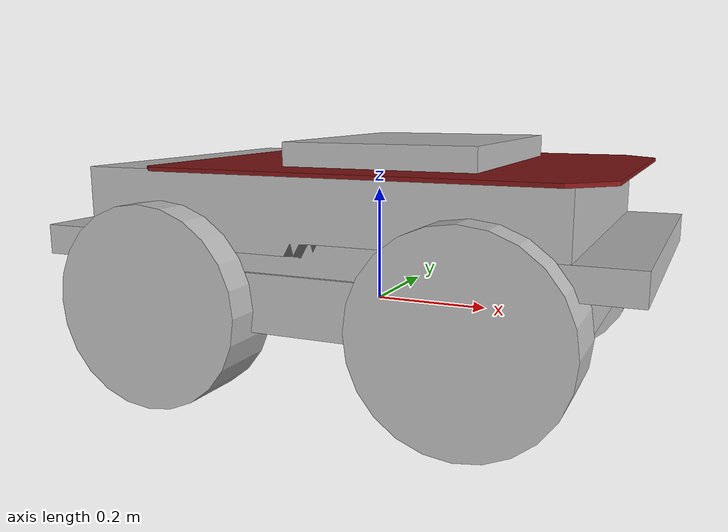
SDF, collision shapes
<?xml version="1.0"?>
<sdf version="1.6">
    <model name="X1">
        <enable_wind>1</enable_wind>
        <static>0</static>
        <link name="base_link">
            <inertial>
                <pose frame="">0.0 0.0 0.062 0 0 0</pose>
                <mass>46.034</mass>
                <inertia>
                    <ixx>0.613201</ixx>
                    <ixy>-0.0236401</ixy>
                    <ixz>-0.1197</ixz>
                    <iyy>1.7496</iyy>
                    <iyz>-0.00154411</iyz>
                    <izz>2.0406</izz>
                </inertia>
            </inertial>
            <collision name="base_link_collision">
                <pose frame="">0 0 0.12 0 0 0</pose>
                <geometry>
                    <box>
                        <size>0.9874 0.5709 0.05</size>
                    </box>
                </geometry>
            </collision>
            <collision name="base_link_collision_bottom">
                <pose frame="">0 0 0.046 0 0 0</pose>
                <geometry>
                    <box>
                        <size>0.80 0.5709 0.095</size>
                    </box>
                </geometry>
            </collision>
            <collision name="base_link_collision_1">
                <pose frame="">0 0 0.185625 0 0 0</pose>
                <geometry>
                    <box>
                        <size>0.78992 0.5709 0.12375</size>
                    </box>
                </geometry>
            </collision>
            <collision name="top_plate_collision">
                <pose frame="">0.0812 0 0.245 0 0 0</pose>
                <geometry>
                    <mesh>
                        <uri>model://X1/meshes/top_plate.dae</uri>
                    </mesh>
                </geometry>
            </collision>
            <collision name="top_plate_collision_2">
                <pose frame="">0.0812 0 0.245 0 0 0</pose>
                <geometry>
                    <box>
                        <size>0.32 0.41 0.09</size>
                    </box>
                </geometry>
            </collision>
            <visual name="base_link_visual">
                <pose frame="">0 0 0 0 0 -3.14159</pose>
                <geometry>
                    <mesh>
                        <uri>model://X1/meshes/chassis.dae</uri>
                    </mesh>
                </geometry>
            </visual>
            <visual name="marker_visual_1">
                <pose frame="">0.066047 0.212211 0.209188 -3.14159 1.57079 -1.60259</pose>
                <geometry>
                    <mesh>
                        <uri>model://X1/meshes/led.dae</uri>
                    </mesh>
                </geometry>
            </visual>
            <visual name="marker_visual_2">
                <pose frame="">-0.066047 0.212211 0.209188 -3.14159 1.57079 -1.60259</pose>
                <geometry>
                    <mesh>
                        <uri>model://X1/meshes/led.dae</uri>
                    </mesh>
                </geometry>
            </visual>
            <visual name="marker_visual_3">
                <pose frame="">-0.42493 0 0.209188 3.14159 1.57079 7e-06</pose>
                <geometry>
                    <mesh>
                        <uri>model://X1/meshes/led.dae</uri>
                    </mesh>
                </geometry>
            </visual>
            <visual name="marker_visual_4">
                <pose frame="">-0.42493 0.13619 0.209188 3.14159 1.57079 7e-06</pose>
                <geometry>
                    <mesh>
                        <uri>model://X1/meshes/led.dae</uri>
                    </mesh>
                </geometry>
            </visual>
            <visual name="marker_visual_5">
                <pose frame="">-0.42493 -0.13619 0.209188 3.14159 1.57079 7e-06</pose>
                <geometry>
                    <mesh>
                        <uri>model://X1/meshes/led.dae</uri>
                    </mesh>
                </geometry>
            </visual>
            <visual name="marker_visual_6">
                <pose frame="">0.066047 -0.212211 0.209188 3.14159 1.57079 1.60259</pose>
                <geometry>
                    <mesh>
                        <uri>model://X1/meshes/led.dae</uri>
                    </mesh>
                </geometry>
            </visual>
            <visual name="marker_visual_7">
                <pose frame="">-0.066047 -0.212211 0.209188 3.14159 1.57079 1.60259</pose>
                <geometry>
                    <mesh>
                        <uri>model://X1/meshes/led.dae</uri>
                    </mesh>
                </geometry>
            </visual>
            <visual name="top_plate_visual">
                <pose frame="">0.0812 0 0.245 0 0 0</pose>
                <geometry>
                    <mesh>
                        <uri>model://X1/meshes/top_plate_new.dae</uri>
                    </mesh>
                </geometry>
            </visual>

        </link>
        <link name="front_left_wheel">
            <pose frame="">0.256 0.2854 0.03282 0 0 0</pose>
            <inertial>
                <mass>2.637</mass>
                <inertia>
                    <ixx>0.02467</ixx>
                    <ixy>0</ixy>
                    <ixz>0</ixz>
                    <iyy>0.04411</iyy>
                    <iyz>0</iyz>
                    <izz>0.02467</izz>
                </inertia>
            </inertial>
            <collision name="collision">
                <pose frame="">0 0 0 -1.5707963267948966 0 0</pose>
                <geometry>
                    <cylinder>
                        <length>0.1143</length>
                        <radius>0.1651</radius>
                    </cylinder>
                </geometry>
                <surface>
                    <friction>
                        <ode>
                            <mu>0.5</mu>
                            <mu2>1</mu2>
                            <slip1>0.00062</slip1>
                            <slip2>0</slip2>
                            <fdir1>0 0 1</fdir1>
                        </ode>
                    </friction>
                </surface>
            </collision>
            <visual name="visual">
                <geometry>
                    <mesh>
                        <uri>model://X1/meshes/wheel.dae</uri>
                    </mesh>
                </geometry>
            </visual>
        </link>
        <joint name="front_left_wheel_joint" type="revolute">
            <parent>base_link</parent>
            <child>front_left_wheel</child>
            <axis>
                <xyz>0 1 0</xyz>
                <limit>
                    <lower>-1.79769e+308</lower>
                    <upper>+1.79769e+308</upper>
                </limit>
            </axis>
        </joint>
        <link name="front_right_wheel">
            <pose frame="">0.256 -0.2854 0.03282 0 0 0</pose>
            <inertial>
                <mass>2.637</mass>
                <inertia>
                    <ixx>0.02467</ixx>
                    <ixy>0</ixy>
                    <ixz>0</ixz>
                    <iyy>0.04411</iyy>
                    <iyz>0</iyz>
                    <izz>0.02467</izz>
                </inertia>
            </inertial>
            <collision name="collision">
                <pose frame="">0 0 0 -1.5707963267948966 0 0</pose>
                <geometry>
                    <cylinder>
                        <length>0.1143</length>
                        <radius>0.1651</radius>
                    </cylinder>
                </geometry>
                <surface>
                    <friction>
                        <ode>
                            <mu>0.5</mu>
                            <mu2>1</mu2>
                            <slip1>0.00062</slip1>
                            <slip2>0</slip2>
                            <fdir1>0 0 1</fdir1>
                        </ode>
                    </friction>
                </surface>
            </collision>
            <visual name="visual">
                <geometry>
                    <mesh>
                        <uri>model://X1/meshes/wheel.dae</uri>
                    </mesh>
                </geometry>
            </visual>
        </link>
        <joint name="front_right_wheel_joint" type="revolute">
            <child>front_right_wheel</child>
            <parent>base_link</parent>
            <axis>
                <xyz>0 1 0</xyz>
                <limit>
                    <lower>-1.79769e+308</lower>
                    <upper>+1.79769e+308</upper>
                </limit>
            </axis>
        </joint>
        <link name="rear_left_wheel">
            <pose frame="">-0.256 0.2854 0.03282 0 0 0</pose>
            <inertial>
                <mass>2.637</mass>
                <inertia>
                    <ixx>0.02467</ixx>
                    <ixy>0</ixy>
                    <ixz>0</ixz>
                    <iyy>0.04411</iyy>
                    <iyz>0</iyz>
                    <izz>0.02467</izz>
                </inertia>
            </inertial>
            <collision name="collision">
                <pose frame="">0 0 0 -1.5707963267948966 0 0</pose>
                <geometry>
                    <cylinder>
                        <length>0.1143</length>
                        <radius>0.1651</radius>
                    </cylinder>
                </geometry>
                <surface>
                    <friction>
                        <ode>
                            <mu>0.5</mu>
                            <mu2>1</mu2>
                            <slip1>0.00062</slip1>
                            <slip2>0</slip2>
                            <fdir1>0 0 1</fdir1>
                        </ode>
                    </friction>
                </surface>
            </collision>
            <visual name="visual">
                <geometry>
                    <mesh>
                        <uri>model://X1/meshes/wheel.dae</uri>
                    </mesh>
                </geometry>
            </visual>
        </link>
        <joint name="rear_left_wheel_joint" type="revolute">
            <parent>base_link</parent>
            <child>rear_left_wheel</child>
            <axis>
                <xyz>0 1 0</xyz>
                <limit>
                    <lower>-1.79769e+308</lower>
                    <upper>+1.79769e+308</upper>
                </limit>
            </axis>
        </joint>
        <link name="rear_right_wheel">
            <pose frame="">-0.256 -0.2854 0.03282 0 0 0</pose>
            <inertial>
                <mass>2.637</mass>
                <inertia>
                    <ixx>0.02467</ixx>
                    <ixy>0</ixy>
                    <ixz>0</ixz>
                    <iyy>0.04411</iyy>
                    <iyz>0</iyz>
                    <izz>0.02467</izz>
                </inertia>
            </inertial>
            <collision name="collision">
                <pose frame="">0 0 0 -1.5707963267948966 0 0</pose>
                <geometry>
                    <cylinder>
                        <length>0.1143</length>
                        <radius>0.1651</radius>
                    </cylinder>
                </geometry>
                <surface>
                    <friction>
                        <ode>
                            <mu>0.5</mu>
                            <mu2>1</mu2>
                            <slip1>0.00062</slip1>
                            <slip2>0</slip2>
                            <fdir1>0 0 1</fdir1>
                        </ode>
                    </friction>
                </surface>
            </collision>
            <visual name="visual">
                <geometry>
                    <mesh>
                        <uri>model://X1/meshes/wheel.dae</uri>
                    </mesh>
                </geometry>
            </visual>
        </link>
        <joint name="rear_right_wheel_joint" type="revolute">
            <child>rear_right_wheel</child>
            <parent>base_link</parent>
            <axis>
                <xyz>0 1 0</xyz>
                <limit>
                    <lower>-1.79769e+308</lower>
                    <upper>+1.79769e+308</upper>
                </limit>
            </axis>
        </joint>
        <plugin
            filename="gz-sim-diff-drive-system"
            name="gz::sim::systems::DiffDrive">
            <left_joint>front_left_wheel_joint</left_joint>
            <left_joint>rear_left_wheel_joint</left_joint>
            <right_joint>front_right_wheel_joint</right_joint>
            <right_joint>rear_right_wheel_joint</right_joint>
            <wheel_separation>0.5708</wheel_separation>
            <wheel_radius>0.1651</wheel_radius>
            <odom_publish_frequency>1</odom_publish_frequency>
            <topic>cmd_rover_vel</topic>
        </plugin>
        <plugin
            name="gz::sim::systems::OdometryPublisher"
            filename="gz-sim-odometry-publisher-system">
            <topic>/landing_pad/odom</topic>
            <odom_frame_id>map</odom_frame_id>
            <child_frame_id>base_link</child_frame_id>
            <world_frame>true</world_frame>
            <publish_odom>true</publish_odom>
        </plugin>
    </model>
</sdf>
